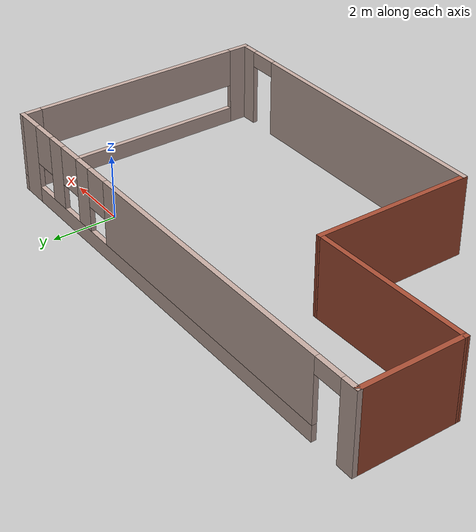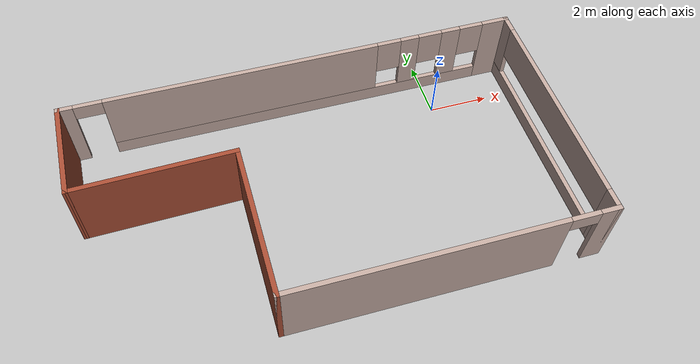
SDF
<?xml version='1.0'?>
<sdf version='1.6'>
  <model name='building'>
    <pose frame=''>-4.60486 -2.71464 0 0 -0 0</pose>
    <link name='Wall_1'>
      <collision name='Wall_1_Collision'>
        <geometry>
          <box>
            <size>5 0.15 2.5</size>
          </box>
        </geometry>
        <pose frame=''>0 0 1.25 0 -0 0</pose>
      </collision>
      <visual name='Wall_1_Visual'>
        <pose frame=''>0 0 1.25 0 -0 0</pose>
        <geometry>
          <box>
            <size>5 0.15 2.5</size>
          </box>
        </geometry>
        <material>
          <script>
            <uri>file://media/materials/scripts/gazebo.material</uri>
            <name>Gazebo/Bricks</name>
          </script>
          <ambient>1 1 1 1</ambient>
        </material>
        <meta>
          <layer>0</layer>
        </meta>
      </visual>
      <pose frame=''>-2.42426 -1.5 0 0 0 -1.5708</pose>
    </link>
    <link name='Wall_2'>
      <pose frame=''>2.50074 -3.925 0 0 -0 0</pose>
      <visual name='Wall_2_Visual_0'>
        <pose frame=''>-0.772571 0 1.25 0 -0 0</pose>
        <geometry>
          <box>
            <size>8.45486 0.15 2.5</size>
          </box>
        </geometry>
        <material>
          <script>
            <uri>file://media/materials/scripts/gazebo.material</uri>
            <name>Gazebo/Grey</name>
          </script>
          <ambient>0.760784 0.662745 0.627451 1</ambient>
        </material>
        <meta>
          <layer>0</layer>
        </meta>
      </visual>
      <collision name='Wall_2_Collision_0'>
        <geometry>
          <box>
            <size>8.45486 0.15 2.5</size>
          </box>
        </geometry>
        <pose frame=''>-0.772571 0 1.25 0 -0 0</pose>
      </collision>
      <visual name='Wall_2_Visual_1'>
        <pose frame=''>4.67743 0 1.25 0 -0 0</pose>
        <geometry>
          <box>
            <size>0.645142 0.15 2.5</size>
          </box>
        </geometry>
        <material>
          <script>
            <uri>file://media/materials/scripts/gazebo.material</uri>
            <name>Gazebo/Grey</name>
          </script>
          <ambient>0.760784 0.662745 0.627451 1</ambient>
        </material>
        <meta>
          <layer>0</layer>
        </meta>
      </visual>
      <collision name='Wall_2_Collision_1'>
        <geometry>
          <box>
            <size>0.645142 0.15 2.5</size>
          </box>
        </geometry>
        <pose frame=''>4.67743 0 1.25 0 -0 0</pose>
      </collision>
      <visual name='Wall_2_Visual_2'>
        <pose frame=''>3.90486 0 2.25 0 -0 0</pose>
        <geometry>
          <box>
            <size>0.9 0.15 0.5</size>
          </box>
        </geometry>
        <material>
          <script>
            <uri>file://media/materials/scripts/gazebo.material</uri>
            <name>Gazebo/Grey</name>
          </script>
          <ambient>0.760784 0.662745 0.627451 1</ambient>
        </material>
        <meta>
          <layer>0</layer>
        </meta>
      </visual>
      <collision name='Wall_2_Collision_2'>
        <geometry>
          <box>
            <size>0.9 0.15 0.5</size>
          </box>
        </geometry>
        <pose frame=''>3.90486 0 2.25 0 -0 0</pose>
      </collision>
    </link>
    <link name='Wall_3'>
      <pose frame=''>7.42574 0 0 0 -0 1.5708</pose>
      <visual name='Wall_3_Visual_0'>
        <pose frame=''>-3.64829 0 1.25 0 -0 0</pose>
        <geometry>
          <box>
            <size>0.703421 0.15 2.5</size>
          </box>
        </geometry>
        <material>
          <script>
            <uri>file://media/materials/scripts/gazebo.material</uri>
            <name>Gazebo/Grey</name>
          </script>
          <ambient>0.760784 0.662745 0.627451 1</ambient>
        </material>
        <meta>
          <layer>0</layer>
        </meta>
      </visual>
      <collision name='Wall_3_Collision_0'>
        <geometry>
          <box>
            <size>0.703421 0.15 2.5</size>
          </box>
        </geometry>
        <pose frame=''>-3.64829 0 1.25 0 -0 0</pose>
      </collision>
      <visual name='Wall_3_Visual_1'>
        <pose frame=''>0.351711 0 0.25 0 -0 0</pose>
        <geometry>
          <box>
            <size>7.29658 0.15 0.5</size>
          </box>
        </geometry>
        <material>
          <script>
            <uri>file://media/materials/scripts/gazebo.material</uri>
            <name>Gazebo/Grey</name>
          </script>
          <ambient>0.760784 0.662745 0.627451 1</ambient>
        </material>
        <meta>
          <layer>0</layer>
        </meta>
      </visual>
      <collision name='Wall_3_Collision_1'>
        <geometry>
          <box>
            <size>7.29658 0.15 0.5</size>
          </box>
        </geometry>
        <pose frame=''>0.351711 0 0.25 0 -0 0</pose>
      </collision>
      <visual name='Wall_3_Visual_2'>
        <pose frame=''>3.67823 0 1.5 0 -0 0</pose>
        <geometry>
          <box>
            <size>0.643529 0.15 2</size>
          </box>
        </geometry>
        <material>
          <script>
            <uri>file://media/materials/scripts/gazebo.material</uri>
            <name>Gazebo/Grey</name>
          </script>
          <ambient>0.760784 0.662745 0.627451 1</ambient>
        </material>
        <meta>
          <layer>0</layer>
        </meta>
      </visual>
      <collision name='Wall_3_Collision_2'>
        <geometry>
          <box>
            <size>0.643529 0.15 2</size>
          </box>
        </geometry>
        <pose frame=''>3.67823 0 1.5 0 -0 0</pose>
      </collision>
      <visual name='Wall_3_Visual_3'>
        <pose frame=''>0.029946 0 1.9 0 -0 0</pose>
        <geometry>
          <box>
            <size>6.65305 0.15 1.2</size>
          </box>
        </geometry>
        <material>
          <script>
            <uri>file://media/materials/scripts/gazebo.material</uri>
            <name>Gazebo/Grey</name>
          </script>
          <ambient>0.760784 0.662745 0.627451 1</ambient>
        </material>
        <meta>
          <layer>0</layer>
        </meta>
      </visual>
      <collision name='Wall_3_Collision_3'>
        <geometry>
          <box>
            <size>6.65305 0.15 1.2</size>
          </box>
        </geometry>
        <pose frame=''>0.029946 0 1.9 0 -0 0</pose>
      </collision>
    </link>
    <link name='Wall_4'>
      <pose frame=''>0.000742 3.925 0 0 -0 3.14159</pose>
      <visual name='Wall_4_Visual_0'>
        <pose frame=''>-7.03175 0 1.25 0 -0 0</pose>
        <geometry>
          <box>
            <size>0.936505 0.15 2.5</size>
          </box>
        </geometry>
        <material>
          <script>
            <uri>file://media/materials/scripts/gazebo.material</uri>
            <name>Gazebo/Grey</name>
          </script>
          <ambient>0.760784 0.662745 0.627451 1</ambient>
        </material>
        <meta>
          <layer>0</layer>
        </meta>
      </visual>
      <collision name='Wall_4_Collision_0'>
        <geometry>
          <box>
            <size>0.936505 0.15 2.5</size>
          </box>
        </geometry>
        <pose frame=''>-7.03175 0 1.25 0 -0 0</pose>
      </collision>
      <visual name='Wall_4_Visual_1'>
        <pose frame=''>7.22903 0 1.25 0 -0 0</pose>
        <geometry>
          <box>
            <size>0.541945 0.15 2.5</size>
          </box>
        </geometry>
        <material>
          <script>
            <uri>file://media/materials/scripts/gazebo.material</uri>
            <name>Gazebo/Grey</name>
          </script>
          <ambient>0.760784 0.662745 0.627451 1</ambient>
        </material>
        <meta>
          <layer>0</layer>
        </meta>
      </visual>
      <collision name='Wall_4_Collision_1'>
        <geometry>
          <box>
            <size>0.541945 0.15 2.5</size>
          </box>
        </geometry>
        <pose frame=''>7.22903 0 1.25 0 -0 0</pose>
      </collision>
      <visual name='Wall_4_Visual_2'>
        <pose frame=''>-0.25272 0 0.25 0 -0 0</pose>
        <geometry>
          <box>
            <size>12.6215 0.15 0.5</size>
          </box>
        </geometry>
        <material>
          <script>
            <uri>file://media/materials/scripts/gazebo.material</uri>
            <name>Gazebo/Grey</name>
          </script>
          <ambient>0.760784 0.662745 0.627451 1</ambient>
        </material>
        <meta>
          <layer>0</layer>
        </meta>
      </visual>
      <collision name='Wall_4_Collision_2'>
        <geometry>
          <box>
            <size>12.6215 0.15 0.5</size>
          </box>
        </geometry>
        <pose frame=''>-0.25272 0 0.25 0 -0 0</pose>
      </collision>
      <visual name='Wall_4_Visual_3'>
        <pose frame=''>-5.43941 0 1.5 0 -0 0</pose>
        <geometry>
          <box>
            <size>0.648177 0.15 2</size>
          </box>
        </geometry>
        <material>
          <script>
            <uri>file://media/materials/scripts/gazebo.material</uri>
            <name>Gazebo/Grey</name>
          </script>
          <ambient>0.760784 0.662745 0.627451 1</ambient>
        </material>
        <meta>
          <layer>0</layer>
        </meta>
      </visual>
      <collision name='Wall_4_Collision_3'>
        <geometry>
          <box>
            <size>0.648177 0.15 2</size>
          </box>
        </geometry>
        <pose frame=''>-5.43941 0 1.5 0 -0 0</pose>
      </collision>
      <visual name='Wall_4_Visual_4'>
        <pose frame=''>-4.00129 0 1.5 0 -0 0</pose>
        <geometry>
          <box>
            <size>0.628064 0.15 2</size>
          </box>
        </geometry>
        <material>
          <script>
            <uri>file://media/materials/scripts/gazebo.material</uri>
            <name>Gazebo/Grey</name>
          </script>
          <ambient>0.760784 0.662745 0.627451 1</ambient>
        </material>
        <meta>
          <layer>0</layer>
        </meta>
      </visual>
      <collision name='Wall_4_Collision_4'>
        <geometry>
          <box>
            <size>0.628064 0.15 2</size>
          </box>
        </geometry>
        <pose frame=''>-4.00129 0 1.5 0 -0 0</pose>
      </collision>
      <visual name='Wall_4_Visual_5'>
        <pose frame=''>1.5854 0 1.5 0 -0 0</pose>
        <geometry>
          <box>
            <size>8.94531 0.15 2</size>
          </box>
        </geometry>
        <material>
          <script>
            <uri>file://media/materials/scripts/gazebo.material</uri>
            <name>Gazebo/Grey</name>
          </script>
          <ambient>0.760784 0.662745 0.627451 1</ambient>
        </material>
        <meta>
          <layer>0</layer>
        </meta>
      </visual>
      <collision name='Wall_4_Collision_5'>
        <geometry>
          <box>
            <size>8.94531 0.15 2</size>
          </box>
        </geometry>
        <pose frame=''>1.5854 0 1.5 0 -0 0</pose>
      </collision>
      <visual name='Wall_4_Visual_6'>
        <pose frame=''>-6.1635 0 1.9 0 -0 0</pose>
        <geometry>
          <box>
            <size>0.8 0.15 1.2</size>
          </box>
        </geometry>
        <material>
          <script>
            <uri>file://media/materials/scripts/gazebo.material</uri>
            <name>Gazebo/Grey</name>
          </script>
          <ambient>0.760784 0.662745 0.627451 1</ambient>
        </material>
        <meta>
          <layer>0</layer>
        </meta>
      </visual>
      <collision name='Wall_4_Collision_6'>
        <geometry>
          <box>
            <size>0.8 0.15 1.2</size>
          </box>
        </geometry>
        <pose frame=''>-6.1635 0 1.9 0 -0 0</pose>
      </collision>
      <visual name='Wall_4_Visual_7'>
        <pose frame=''>-4.71532 0 1.9 0 -0 0</pose>
        <geometry>
          <box>
            <size>0.8 0.15 1.2</size>
          </box>
        </geometry>
        <material>
          <script>
            <uri>file://media/materials/scripts/gazebo.material</uri>
            <name>Gazebo/Grey</name>
          </script>
          <ambient>0.760784 0.662745 0.627451 1</ambient>
        </material>
        <meta>
          <layer>0</layer>
        </meta>
      </visual>
      <collision name='Wall_4_Collision_7'>
        <geometry>
          <box>
            <size>0.8 0.15 1.2</size>
          </box>
        </geometry>
        <pose frame=''>-4.71532 0 1.9 0 -0 0</pose>
      </collision>
      <visual name='Wall_4_Visual_8'>
        <pose frame=''>-3.28725 0 1.9 0 -0 0</pose>
        <geometry>
          <box>
            <size>0.8 0.15 1.2</size>
          </box>
        </geometry>
        <material>
          <script>
            <uri>file://media/materials/scripts/gazebo.material</uri>
            <name>Gazebo/Grey</name>
          </script>
          <ambient>0.760784 0.662745 0.627451 1</ambient>
        </material>
        <meta>
          <layer>0</layer>
        </meta>
      </visual>
      <collision name='Wall_4_Collision_8'>
        <geometry>
          <box>
            <size>0.8 0.15 1.2</size>
          </box>
        </geometry>
        <pose frame=''>-3.28725 0 1.9 0 -0 0</pose>
      </collision>
      <visual name='Wall_4_Visual_9'>
        <pose frame=''>6.50805 0 2.25 0 -0 0</pose>
        <geometry>
          <box>
            <size>0.9 0.15 0.5</size>
          </box>
        </geometry>
        <material>
          <script>
            <uri>file://media/materials/scripts/gazebo.material</uri>
            <name>Gazebo/Grey</name>
          </script>
          <ambient>0.760784 0.662745 0.627451 1</ambient>
        </material>
        <meta>
          <layer>0</layer>
        </meta>
      </visual>
      <collision name='Wall_4_Collision_9'>
        <geometry>
          <box>
            <size>0.9 0.15 0.5</size>
          </box>
        </geometry>
        <pose frame=''>6.50805 0 2.25 0 -0 0</pose>
      </collision>
    </link>
    <link name='Wall_5'>
      <collision name='Wall_5_Collision'>
        <geometry>
          <box>
            <size>3.25 0.15 2.5</size>
          </box>
        </geometry>
        <pose frame=''>0 0 1.25 0 -0 0</pose>
      </collision>
      <visual name='Wall_5_Visual'>
        <pose frame=''>0 0 1.25 0 -0 0</pose>
        <geometry>
          <box>
            <size>3.25 0.15 2.5</size>
          </box>
        </geometry>
        <material>
          <script>
            <uri>file://media/materials/scripts/gazebo.material</uri>
            <name>Gazebo/Bricks</name>
          </script>
          <ambient>0.760784 0.662745 0.627451 1</ambient>
        </material>
        <meta>
          <layer>0</layer>
        </meta>
      </visual>
      <pose frame=''>-7.42426 2.375 0 0 0 -1.5708</pose>
    </link>
    <link name='Wall_6'>
      <collision name='Wall_6_Collision'>
        <geometry>
          <box>
            <size>5.151 0.15 2.5</size>
          </box>
        </geometry>
        <pose frame=''>0 0 1.25 0 -0 0</pose>
      </collision>
      <visual name='Wall_6_Visual'>
        <pose frame=''>0 0 1.25 0 -0 0</pose>
        <geometry>
          <box>
            <size>5.151 0.15 2.5</size>
          </box>
        </geometry>
        <material>
          <script>
            <uri>file://media/materials/scripts/gazebo.material</uri>
            <name>Gazebo/Bricks</name>
          </script>
          <ambient>0.760784 0.662745 0.627451 1</ambient>
        </material>
        <meta>
          <layer>0</layer>
        </meta>
      </visual>
      <pose frame=''>-4.92426 0.875 0 0 -0 0.019997</pose>
    </link>
    <static>1</static>
  </model>
</sdf>
